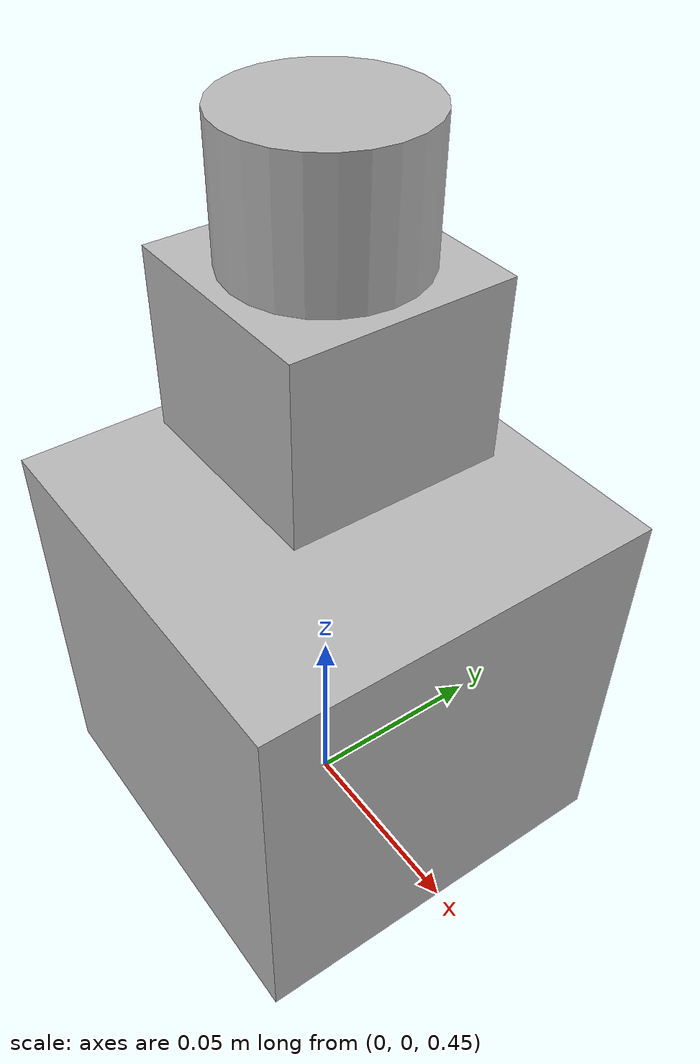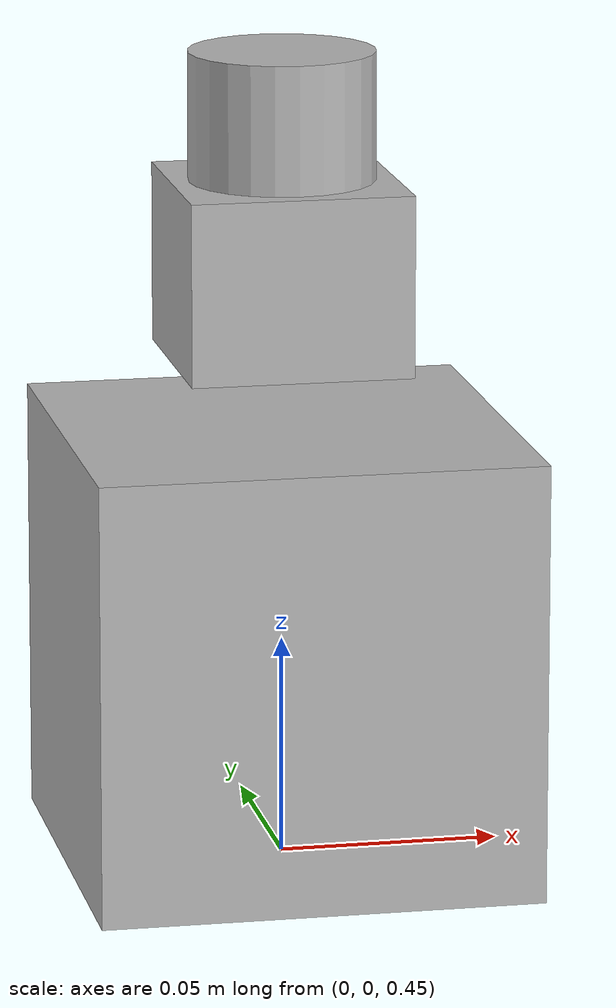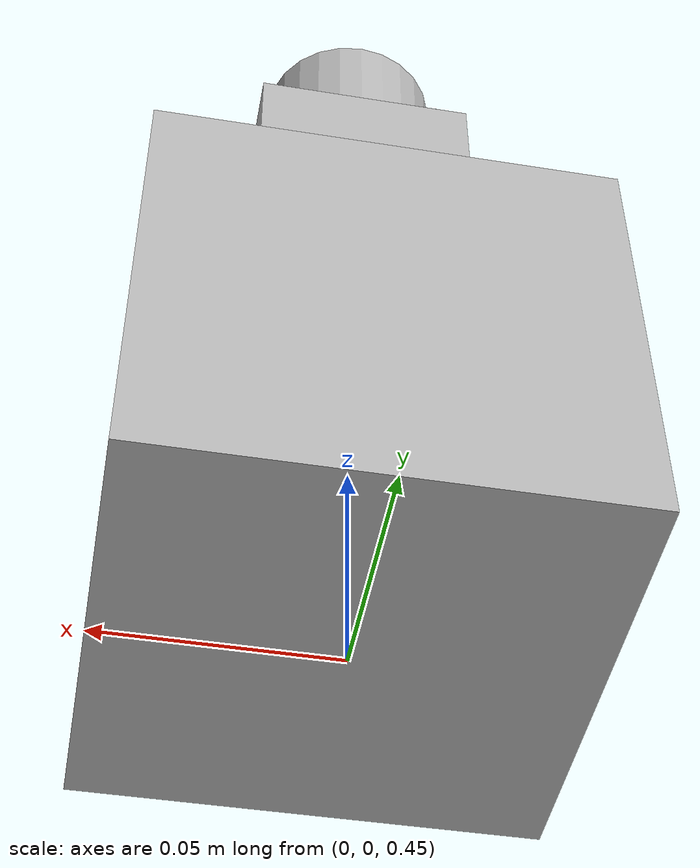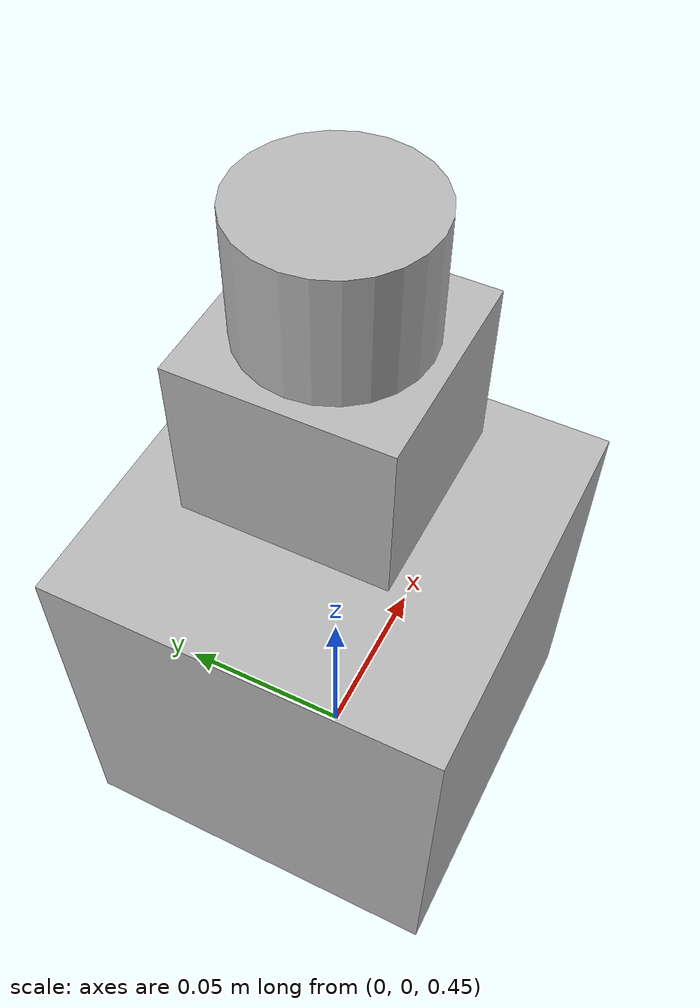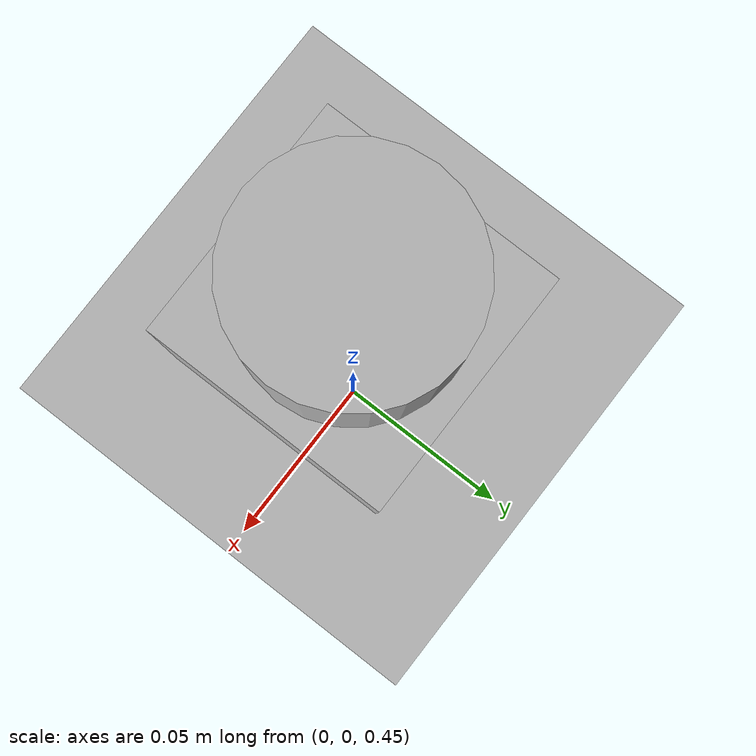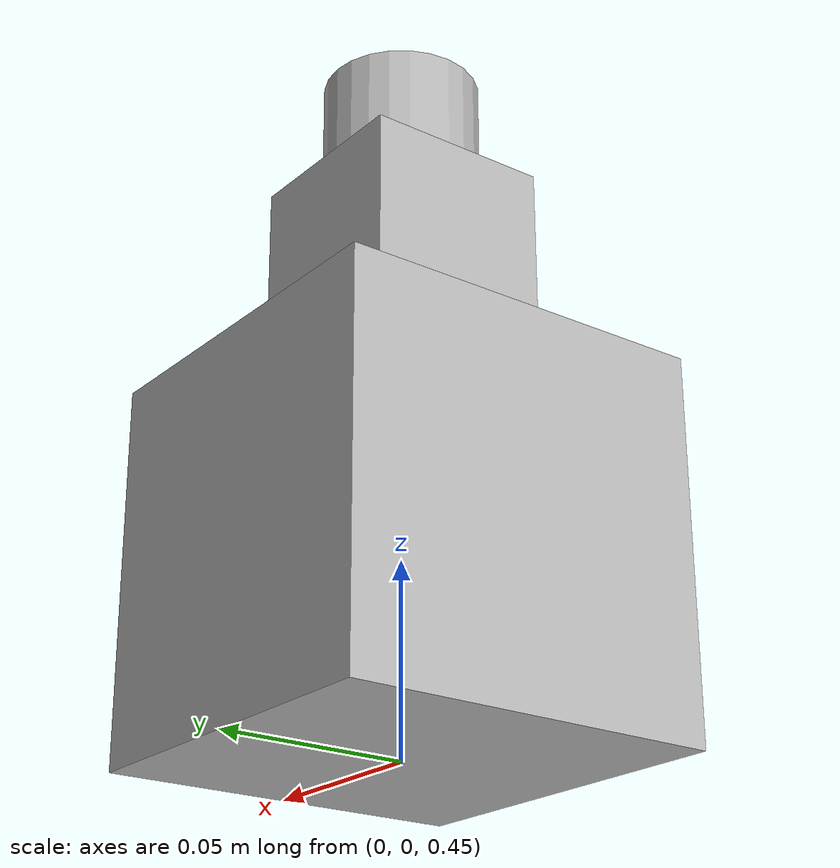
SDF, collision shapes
<?xml version='1.0'?>
<sdf version="1.4">
<model name="my_model">
  <pose>0 0 0.5 0 0 0</pose>
  <static>false</static>
    <link name="base">
      <inertial>
        <mass>5.0</mass>
        <inertia> <!-- interias are tricky to compute -->
          <!-- http://answers.gazebosim.org/question/4372/the-inertia-matrix-explained/ -->
          <ixx>0.083</ixx>       <!-- for a box: ixx = 0.083 * mass * (y*y + z*z) -->
          <ixy>0.0</ixy>         <!-- for a box: ixy = 0 -->
          <ixz>0.0</ixz>         <!-- for a box: ixz = 0 -->
          <iyy>0.083</iyy>       <!-- for a box: iyy = 0.083 * mass * (x*x + z*z) -->
          <iyz>0.0</iyz>         <!-- for a box: iyz = 0 -->
          <izz>0.083</izz>       <!-- for a box: izz = 0.083 * mass * (x*x + y*y) -->
        </inertia>
      </inertial>
      <collision name="collision">
        <geometry>
          <box>
            <size>0.1 0.1 0.1</size>
          </box>
        </geometry>
      </collision>
      <visual name="visual">
        <geometry>
          <box>
            <size>0.1 0.1 0.1</size>
          </box>
        </geometry>
      </visual>
    </link>

    <include>
      <uri>model://hokuyo</uri>
      <pose>0 0 0.1 0 0 0</pose>
    </include>
    <joint name="hokuyo_joint" type="revolute">
      <child>hokuyo::link</child>
      <parent>base</parent>
      <axis>
        <xyz>0 0 1</xyz>
        <limit>
          <upper>0</upper>
          <lower>0</lower>
        </limit>
      </axis>
    </joint>

  </model>
</sdf>

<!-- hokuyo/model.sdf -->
<sdf version="1.5">
  <model name="hokuyo">
    <pose>0 0 0.035 0 0 0</pose>
    <link name="link">
      <inertial>
        <mass>0.1</mass>
      </inertial>
      <visual name="visual">
        <geometry>
          <mesh>
            <uri>model://../model_source/models/hokuyo/meshes/hokuyo.dae</uri>
          </mesh>
        </geometry>
      </visual>
      <collision name="collision-base">
        <pose>0 0 -0.0145 0 0 0</pose>
        <geometry>
          <box>
            <size>0.05 0.05 0.041</size>
          </box>
        </geometry>
      </collision>
      <collision name="collision-top">
        <pose>0 0 0.0205 0 0 0</pose>
        <geometry>
          <cylinder>
            <radius>0.021</radius>
            <length>0.029</length>
          </cylinder>
        </geometry>
      </collision>
      <sensor name="laser" type="ray">
        <pose>0.01 0 0.0175 0 -0 0</pose>
        <ray>
          <scan>
            <horizontal>
              <samples>640</samples>
              <resolution>1</resolution>
              <min_angle>-2.26889</min_angle>
              <max_angle>2.268899</max_angle>
            </horizontal>
          </scan>
          <range>
            <min>0.08</min>
            <max>10</max>
            <resolution>0.01</resolution>
          </range>
        </ray>
        <plugin name="laser" filename="libRayPlugin.so" />
        <always_on>1</always_on>
        <update_rate>30</update_rate>
        <visualize>true</visualize>
      </sensor>
    </link>
  </model>
</sdf>
